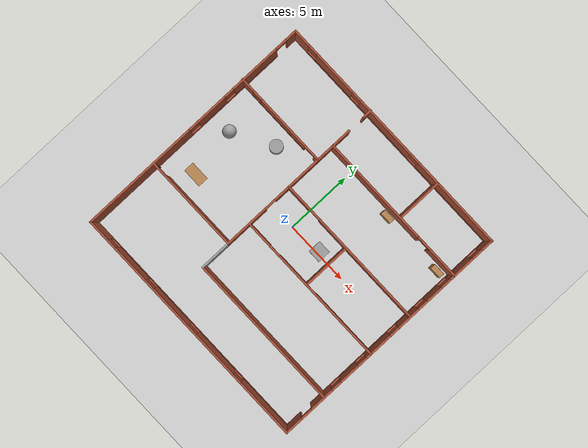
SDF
<sdf version="1.7">
 <world name="default">
  <light name="sun" type="directional">
   <pose>0 0 10 0 -0 0</pose>
   <diffuse>0.8 0.8 0.8 1</diffuse>
   <specular>0.2 0.2 0.2 1</specular>
   <attenuation>
    <range>1000</range>
    <constant>0.9</constant>
    <linear>0.01</linear>
    <quadratic>0.001</quadratic>
   </attenuation>
   <direction>-0.5 0.1 -0.9</direction>
   <spot><inner_angle>0</inner_angle><outer_angle>0</outer_angle><falloff>0</falloff></spot>
  </light>
  <model name="ground_plane">
   <static>1</static>
   <link name="link">
    <collision name="collision">
     <geometry><plane><normal>0 0 1</normal><size>100 100</size></plane></geometry>
     <surface>
      <contact><collide_bitmask>65535</collide_bitmask></contact>
      <friction><ode><mu>100</mu><mu2>50</mu2></ode></friction>
     </surface>
    </collision>
    <visual name="visual">
     <cast_shadows>0</cast_shadows>
     <geometry><plane><normal>0 0 1</normal><size>100 100</size></plane></geometry>
     <material>
      <script><uri>file://media/materials/scripts/gazebo.material</uri><name>Gazebo/Grey</name></script>
     </material>
    </visual>
   </link>
  </model>
  <gravity>0 0 -9.8</gravity>
  <magnetic_field>6e-06 2.3e-05 -4.2e-05</magnetic_field>
  <atmosphere type="adiabatic"/>
  <physics type="ode">
   <max_step_size>0.001</max_step_size>
   <real_time_factor>1</real_time_factor>
   <real_time_update_rate>1000</real_time_update_rate>
  </physics>
  <scene><ambient>0.4 0.4 0.4 1</ambient><background>0.7 0.7 0.7 1</background><shadows>1</shadows></scene>
  <audio><device>default</device></audio>
  <spherical_coordinates>
   <surface_model>EARTH_WGS84</surface_model>
   <latitude_deg>0</latitude_deg>
   <longitude_deg>0</longitude_deg>
   <elevation>0</elevation>
   <heading_deg>0</heading_deg>
  </spherical_coordinates>
  <model name="Robo_house">
   <pose>0.166 -0.2695 0 0 -0 0</pose>
   <link name="Wall_15">
    <pose>0.017 -9.4375 0 0 -0 0</pose>
    <visual name="Wall_15_Visual_0">
     <pose>-8.91507 0 1.25 0 -0 0</pose>
     <geometry><box><size>1.66987 0.15 2.5</size></box></geometry>
     <material>
      <script><uri>file://media/materials/scripts/gazebo.material</uri><name>Gazebo/Bricks</name></script>
      <ambient>1 1 1 1</ambient>
     </material>
     <meta><layer>0</layer></meta>
    </visual>
    <collision name="Wall_15_Collision_0">
     <geometry><box><size>1.66987 0.15 2.5</size></box></geometry>
     <pose>-8.91507 0 1.25 0 -0 0</pose>
    </collision>
    <visual name="Wall_15_Visual_1">
     <pose>0.834934 0 0.25 0 -0 0</pose>
     <geometry><box><size>17.8301 0.15 0.5</size></box></geometry>
     <material>
      <script><uri>file://media/materials/scripts/gazebo.material</uri><name>Gazebo/Bricks</name></script>
      <ambient>1 1 1 1</ambient>
     </material>
     <meta><layer>0</layer></meta>
    </visual>
    <collision name="Wall_15_Collision_1">
     <geometry><box><size>17.8301 0.15 0.5</size></box></geometry>
     <pose>0.834934 0 0.25 0 -0 0</pose>
    </collision>
    <visual name="Wall_15_Visual_2">
     <pose>-5.79807 0 1.5 0 -0 0</pose>
     <geometry><box><size>2.96413 0.15 2</size></box></geometry>
     <material>
      <script><uri>file://media/materials/scripts/gazebo.material</uri><name>Gazebo/Bricks</name></script>
      <ambient>1 1 1 1</ambient>
     </material>
     <meta><layer>0</layer></meta>
    </visual>
    <collision name="Wall_15_Collision_2">
     <geometry><box><size>2.96413 0.15 2</size></box></geometry>
     <pose>-5.79807 0 1.5 0 -0 0</pose>
    </collision>
    <visual name="Wall_15_Visual_3">
     <pose>-1.80528 0 1.5 0 -0 0</pose>
     <geometry><box><size>3.42145 0.15 2</size></box></geometry>
     <material>
      <script><uri>file://media/materials/scripts/gazebo.material</uri><name>Gazebo/Bricks</name></script>
      <ambient>1 1 1 1</ambient>
     </material>
     <meta><layer>0</layer></meta>
    </visual>
    <collision name="Wall_15_Collision_3">
     <geometry><box><size>3.42145 0.15 2</size></box></geometry>
     <pose>-1.80528 0 1.5 0 -0 0</pose>
    </collision>
    <visual name="Wall_15_Visual_4">
     <pose>2.52171 0 1.5 0 -0 0</pose>
     <geometry><box><size>3.63252 0.15 2</size></box></geometry>
     <material>
      <script><uri>file://media/materials/scripts/gazebo.material</uri><name>Gazebo/Bricks</name></script>
      <ambient>1 1 1 1</ambient>
     </material>
     <meta><layer>0</layer></meta>
    </visual>
    <collision name="Wall_15_Collision_4">
     <geometry><box><size>3.63252 0.15 2</size></box></geometry>
     <pose>2.52171 0 1.5 0 -0 0</pose>
    </collision>
    <visual name="Wall_15_Visual_5">
     <pose>7.44398 0 1.5 0 -0 0</pose>
     <geometry><box><size>4.61203 0.15 2</size></box></geometry>
     <material>
      <script><uri>file://media/materials/scripts/gazebo.material</uri><name>Gazebo/Bricks</name></script>
      <ambient>1 1 1 1</ambient>
     </material>
     <meta><layer>0</layer></meta>
    </visual>
    <collision name="Wall_15_Collision_5">
     <geometry><box><size>4.61203 0.15 2</size></box></geometry>
     <pose>7.44398 0 1.5 0 -0 0</pose>
    </collision>
    <visual name="Wall_15_Visual_6">
     <pose>-7.68013 0 1.9 0 -0 0</pose>
     <geometry><box><size>0.8 0.15 1.2</size></box></geometry>
     <material>
      <script><uri>file://media/materials/scripts/gazebo.material</uri><name>Gazebo/Bricks</name></script>
      <ambient>1 1 1 1</ambient>
     </material>
     <meta><layer>0</layer></meta>
    </visual>
    <collision name="Wall_15_Collision_6">
     <geometry><box><size>0.8 0.15 1.2</size></box></geometry>
     <pose>-7.68013 0 1.9 0 -0 0</pose>
    </collision>
    <visual name="Wall_15_Visual_7">
     <pose>-3.91601 0 1.9 0 -0 0</pose>
     <geometry><box><size>0.8 0.15 1.2</size></box></geometry>
     <material>
      <script><uri>file://media/materials/scripts/gazebo.material</uri><name>Gazebo/Bricks</name></script>
      <ambient>1 1 1 1</ambient>
     </material>
     <meta><layer>0</layer></meta>
    </visual>
    <collision name="Wall_15_Collision_7">
     <geometry><box><size>0.8 0.15 1.2</size></box></geometry>
     <pose>-3.91601 0 1.9 0 -0 0</pose>
    </collision>
    <visual name="Wall_15_Visual_8">
     <pose>0.305447 0 1.9 0 -0 0</pose>
     <geometry><box><size>0.8 0.15 1.2</size></box></geometry>
     <material>
      <script><uri>file://media/materials/scripts/gazebo.material</uri><name>Gazebo/Bricks</name></script>
      <ambient>1 1 1 1</ambient>
     </material>
     <meta><layer>0</layer></meta>
    </visual>
    <collision name="Wall_15_Collision_8">
     <geometry><box><size>0.8 0.15 1.2</size></box></geometry>
     <pose>0.305447 0 1.9 0 -0 0</pose>
    </collision>
    <visual name="Wall_15_Visual_9">
     <pose>4.73797 0 1.9 0 -0 0</pose>
     <geometry><box><size>0.8 0.15 1.2</size></box></geometry>
     <material>
      <script><uri>file://media/materials/scripts/gazebo.material</uri><name>Gazebo/Bricks</name></script>
      <ambient>1 1 1 1</ambient>
     </material>
     <meta><layer>0</layer></meta>
    </visual>
    <collision name="Wall_15_Collision_9">
     <geometry><box><size>0.8 0.15 1.2</size></box></geometry>
     <pose>4.73797 0 1.9 0 -0 0</pose>
    </collision>
   </link>
   <link name="Wall_16">
    <pose>9.692 -0.0125 0 0 -0 1.5708</pose>
    <visual name="Wall_16_Visual_0">
     <pose>-8.77922 0 1.25 0 -0 0</pose>
     <geometry><box><size>1.44155 0.15 2.5</size></box></geometry>
     <material>
      <script><uri>file://media/materials/scripts/gazebo.material</uri><name>Gazebo/Bricks</name></script>
      <ambient>1 1 1 1</ambient>
     </material>
     <meta><layer>0</layer></meta>
    </visual>
    <collision name="Wall_16_Collision_0">
     <geometry><box><size>1.44155 0.15 2.5</size></box></geometry>
     <pose>-8.77922 0 1.25 0 -0 0</pose>
    </collision>
    <visual name="Wall_16_Visual_1">
     <pose>-6.20712 0 1.25 0 -0 0</pose>
     <geometry><box><size>1.90264 0.15 2.5</size></box></geometry>
     <material>
      <script><uri>file://media/materials/scripts/gazebo.material</uri><name>Gazebo/Bricks</name></script>
      <ambient>1 1 1 1</ambient>
     </material>
     <meta><layer>0</layer></meta>
    </visual>
    <collision name="Wall_16_Collision_1">
     <geometry><box><size>1.90264 0.15 2.5</size></box></geometry>
     <pose>-6.20712 0 1.25 0 -0 0</pose>
    </collision>
    <visual name="Wall_16_Visual_2">
     <pose>2.1221 0 0.25 0 -0 0</pose>
     <geometry><box><size>14.7558 0.15 0.5</size></box></geometry>
     <material>
      <script><uri>file://media/materials/scripts/gazebo.material</uri><name>Gazebo/Bricks</name></script>
      <ambient>1 1 1 1</ambient>
     </material>
     <meta><layer>0</layer></meta>
    </visual>
    <collision name="Wall_16_Collision_2">
     <geometry><box><size>14.7558 0.15 0.5</size></box></geometry>
     <pose>2.1221 0 0.25 0 -0 0</pose>
    </collision>
    <visual name="Wall_16_Visual_3">
     <pose>-3.67427 0 1.5 0 -0 0</pose>
     <geometry><box><size>1.56306 0.15 2</size></box></geometry>
     <material>
      <script><uri>file://media/materials/scripts/gazebo.material</uri><name>Gazebo/Bricks</name></script>
      <ambient>1 1 1 1</ambient>
     </material>
     <meta><layer>0</layer></meta>
    </visual>
    <collision name="Wall_16_Collision_3">
     <geometry><box><size>1.56306 0.15 2</size></box></geometry>
     <pose>-3.67427 0 1.5 0 -0 0</pose>
    </collision>
    <visual name="Wall_16_Visual_4">
     <pose>-1.00069 0 1.5 0 -0 0</pose>
     <geometry><box><size>2.18411 0.15 2</size></box></geometry>
     <material>
      <script><uri>file://media/materials/scripts/gazebo.material</uri><name>Gazebo/Bricks</name></script>
      <ambient>1 1 1 1</ambient>
     </material>
     <meta><layer>0</layer></meta>
    </visual>
    <collision name="Wall_16_Collision_4">
     <geometry><box><size>2.18411 0.15 2</size></box></geometry>
     <pose>-1.00069 0 1.5 0 -0 0</pose>
    </collision>
    <visual name="Wall_16_Visual_5">
     <pose>1.79027 0 1.5 0 -0 0</pose>
     <geometry><box><size>1.79781 0.15 2</size></box></geometry>
     <material>
      <script><uri>file://media/materials/scripts/gazebo.material</uri><name>Gazebo/Bricks</name></script>
      <ambient>1 1 1 1</ambient>
     </material>
     <meta><layer>0</layer></meta>
    </visual>
    <collision name="Wall_16_Collision_5">
     <geometry><box><size>1.79781 0.15 2</size></box></geometry>
     <pose>1.79027 0 1.5 0 -0 0</pose>
    </collision>
    <visual name="Wall_16_Visual_6">
     <pose>4.15524 0 1.5 0 -0 0</pose>
     <geometry><box><size>1.33214 0.15 2</size></box></geometry>
     <material>
      <script><uri>file://media/materials/scripts/gazebo.material</uri><name>Gazebo/Bricks</name></script>
      <ambient>1 1 1 1</ambient>
     </material>
     <meta><layer>0</layer></meta>
    </visual>
    <collision name="Wall_16_Collision_6">
     <geometry><box><size>1.33214 0.15 2</size></box></geometry>
     <pose>4.15524 0 1.5 0 -0 0</pose>
    </collision>
    <visual name="Wall_16_Visual_7">
     <pose>6.66355 0 1.5 0 -0 0</pose>
     <geometry><box><size>2.08446 0.15 2</size></box></geometry>
     <material>
      <script><uri>file://media/materials/scripts/gazebo.material</uri><name>Gazebo/Bricks</name></script>
      <ambient>1 1 1 1</ambient>
     </material>
     <meta><layer>0</layer></meta>
    </visual>
    <collision name="Wall_16_Collision_7">
     <geometry><box><size>2.08446 0.15 2</size></box></geometry>
     <pose>6.66355 0 1.5 0 -0 0</pose>
    </collision>
    <visual name="Wall_16_Visual_8">
     <pose>9.00289 0 1.5 0 -0 0</pose>
     <geometry><box><size>0.99422 0.15 2</size></box></geometry>
     <material>
      <script><uri>file://media/materials/scripts/gazebo.material</uri><name>Gazebo/Bricks</name></script>
      <ambient>1 1 1 1</ambient>
     </material>
     <meta><layer>0</layer></meta>
    </visual>
    <collision name="Wall_16_Collision_8">
     <geometry><box><size>0.99422 0.15 2</size></box></geometry>
     <pose>9.00289 0 1.5 0 -0 0</pose>
    </collision>
    <visual name="Wall_16_Visual_9">
     <pose>-4.8558 0 1.9 0 -0 0</pose>
     <geometry><box><size>0.8 0.15 1.2</size></box></geometry>
     <material>
      <script><uri>file://media/materials/scripts/gazebo.material</uri><name>Gazebo/Bricks</name></script>
      <ambient>1 1 1 1</ambient>
     </material>
     <meta><layer>0</layer></meta>
    </visual>
    <collision name="Wall_16_Collision_9">
     <geometry><box><size>0.8 0.15 1.2</size></box></geometry>
     <pose>-4.8558 0 1.9 0 -0 0</pose>
    </collision>
    <visual name="Wall_16_Visual_10">
     <pose>-2.49274 0 1.9 0 -0 0</pose>
     <geometry><box><size>0.8 0.15 1.2</size></box></geometry>
     <material>
      <script><uri>file://media/materials/scripts/gazebo.material</uri><name>Gazebo/Bricks</name></script>
      <ambient>1 1 1 1</ambient>
     </material>
     <meta><layer>0</layer></meta>
    </visual>
    <collision name="Wall_16_Collision_10">
     <geometry><box><size>0.8 0.15 1.2</size></box></geometry>
     <pose>-2.49274 0 1.9 0 -0 0</pose>
    </collision>
    <visual name="Wall_16_Visual_11">
     <pose>0.491371 0 1.9 0 -0 0</pose>
     <geometry><box><size>0.8 0.15 1.2</size></box></geometry>
     <material>
      <script><uri>file://media/materials/scripts/gazebo.material</uri><name>Gazebo/Bricks</name></script>
      <ambient>1 1 1 1</ambient>
     </material>
     <meta><layer>0</layer></meta>
    </visual>
    <collision name="Wall_16_Collision_11">
     <geometry><box><size>0.8 0.15 1.2</size></box></geometry>
     <pose>0.491371 0 1.9 0 -0 0</pose>
    </collision>
    <visual name="Wall_16_Visual_12">
     <pose>3.08918 0 1.9 0 -0 0</pose>
     <geometry><box><size>0.8 0.15 1.2</size></box></geometry>
     <material>
      <script><uri>file://media/materials/scripts/gazebo.material</uri><name>Gazebo/Bricks</name></script>
      <ambient>1 1 1 1</ambient>
     </material>
     <meta><layer>0</layer></meta>
    </visual>
    <collision name="Wall_16_Collision_12">
     <geometry><box><size>0.8 0.15 1.2</size></box></geometry>
     <pose>3.08918 0 1.9 0 -0 0</pose>
    </collision>
    <visual name="Wall_16_Visual_13">
     <pose>5.22131 0 1.9 0 -0 0</pose>
     <geometry><box><size>0.8 0.15 1.2</size></box></geometry>
     <material>
      <script><uri>file://media/materials/scripts/gazebo.material</uri><name>Gazebo/Bricks</name></script>
      <ambient>1 1 1 1</ambient>
     </material>
     <meta><layer>0</layer></meta>
    </visual>
    <collision name="Wall_16_Collision_13">
     <geometry><box><size>0.8 0.15 1.2</size></box></geometry>
     <pose>5.22131 0 1.9 0 -0 0</pose>
    </collision>
    <visual name="Wall_16_Visual_14">
     <pose>8.10578 0 1.9 0 -0 0</pose>
     <geometry><box><size>0.8 0.15 1.2</size></box></geometry>
     <material>
      <script><uri>file://media/materials/scripts/gazebo.material</uri><name>Gazebo/Bricks</name></script>
      <ambient>1 1 1 1</ambient>
     </material>
     <meta><layer>0</layer></meta>
    </visual>
    <collision name="Wall_16_Collision_14">
     <geometry><box><size>0.8 0.15 1.2</size></box></geometry>
     <pose>8.10578 0 1.9 0 -0 0</pose>
    </collision>
    <visual name="Wall_16_Visual_15">
     <pose>-7.60845 0 2.25 0 -0 0</pose>
     <geometry><box><size>0.9 0.15 0.5</size></box></geometry>
     <material>
      <script><uri>file://media/materials/scripts/gazebo.material</uri><name>Gazebo/Bricks</name></script>
      <ambient>1 1 1 1</ambient>
     </material>
     <meta><layer>0</layer></meta>
    </visual>
    <collision name="Wall_16_Collision_15">
     <geometry><box><size>0.9 0.15 0.5</size></box></geometry>
     <pose>-7.60845 0 2.25 0 -0 0</pose>
    </collision>
   </link>
   <link name="Wall_20">
    <pose>-9.658 -0.0125 0 0 -0 1.5708</pose>
    <visual name="Wall_20_Visual_0">
     <pose>-4.92846 0 1.25 0 -0 0</pose>
     <geometry><box><size>9.14308 0.15 2.5</size></box></geometry>
     <material>
      <script><uri>file://media/materials/scripts/gazebo.material</uri><name>Gazebo/Bricks</name></script>
      <ambient>1 1 1 1</ambient>
     </material>
     <meta><layer>0</layer></meta>
    </visual>
    <collision name="Wall_20_Collision_0">
     <geometry><box><size>9.14308 0.15 2.5</size></box></geometry>
     <pose>-4.92846 0 1.25 0 -0 0</pose>
    </collision>
    <visual name="Wall_20_Visual_1">
     <pose>9.02608 0 1.25 0 -0 0</pose>
     <geometry><box><size>0.947833 0.15 2.5</size></box></geometry>
     <material>
      <script><uri>file://media/materials/scripts/gazebo.material</uri><name>Gazebo/Bricks</name></script>
      <ambient>1 1 1 1</ambient>
     </material>
     <meta><layer>0</layer></meta>
    </visual>
    <collision name="Wall_20_Collision_1">
     <geometry><box><size>0.947833 0.15 2.5</size></box></geometry>
     <pose>9.02608 0 1.25 0 -0 0</pose>
    </collision>
    <visual name="Wall_20_Visual_2">
     <pose>3.64762 0 0.25 0 -0 0</pose>
     <geometry><box><size>8.00909 0.15 0.5</size></box></geometry>
     <material>
      <script><uri>file://media/materials/scripts/gazebo.material</uri><name>Gazebo/Bricks</name></script>
      <ambient>1 1 1 1</ambient>
     </material>
     <meta><layer>0</layer></meta>
    </visual>
    <collision name="Wall_20_Collision_2">
     <geometry><box><size>8.00909 0.15 0.5</size></box></geometry>
     <pose>3.64762 0 0.25 0 -0 0</pose>
    </collision>
    <visual name="Wall_20_Visual_3">
     <pose>1.67438 0 1.5 0 -0 0</pose>
     <geometry><box><size>2.46259 0.15 2</size></box></geometry>
     <material>
      <script><uri>file://media/materials/scripts/gazebo.material</uri><name>Gazebo/Bricks</name></script>
      <ambient>1 1 1 1</ambient>
     </material>
     <meta><layer>0</layer></meta>
    </visual>
    <collision name="Wall_20_Collision_3">
     <geometry><box><size>2.46259 0.15 2</size></box></geometry>
     <pose>1.67438 0 1.5 0 -0 0</pose>
    </collision>
    <visual name="Wall_20_Visual_4">
     <pose>5.67892 0 1.5 0 -0 0</pose>
     <geometry><box><size>3.9465 0.15 2</size></box></geometry>
     <material>
      <script><uri>file://media/materials/scripts/gazebo.material</uri><name>Gazebo/Bricks</name></script>
      <ambient>1 1 1 1</ambient>
     </material>
     <meta><layer>0</layer></meta>
    </visual>
    <collision name="Wall_20_Collision_4">
     <geometry><box><size>3.9465 0.15 2</size></box></geometry>
     <pose>5.67892 0 1.5 0 -0 0</pose>
    </collision>
    <visual name="Wall_20_Visual_5">
     <pose>0.04308 0 1.9 0 -0 0</pose>
     <geometry><box><size>0.8 0.15 1.2</size></box></geometry>
     <material>
      <script><uri>file://media/materials/scripts/gazebo.material</uri><name>Gazebo/Bricks</name></script>
      <ambient>1 1 1 1</ambient>
     </material>
     <meta><layer>0</layer></meta>
    </visual>
    <collision name="Wall_20_Collision_5">
     <geometry><box><size>0.8 0.15 1.2</size></box></geometry>
     <pose>0.04308 0 1.9 0 -0 0</pose>
    </collision>
    <visual name="Wall_20_Visual_6">
     <pose>3.30567 0 1.9 0 -0 0</pose>
     <geometry><box><size>0.8 0.15 1.2</size></box></geometry>
     <material>
      <script><uri>file://media/materials/scripts/gazebo.material</uri><name>Gazebo/Bricks</name></script>
      <ambient>1 1 1 1</ambient>
     </material>
     <meta><layer>0</layer></meta>
    </visual>
    <collision name="Wall_20_Collision_6">
     <geometry><box><size>0.8 0.15 1.2</size></box></geometry>
     <pose>3.30567 0 1.9 0 -0 0</pose>
    </collision>
    <visual name="Wall_20_Visual_7">
     <pose>8.10217 0 2.25 0 -0 0</pose>
     <geometry><box><size>0.9 0.15 0.5</size></box></geometry>
     <material>
      <script><uri>file://media/materials/scripts/gazebo.material</uri><name>Gazebo/Bricks</name></script>
      <ambient>1 1 1 1</ambient>
     </material>
     <meta><layer>0</layer></meta>
    </visual>
    <collision name="Wall_20_Collision_7">
     <geometry><box><size>0.9 0.15 0.5</size></box></geometry>
     <pose>8.10217 0 2.25 0 -0 0</pose>
    </collision>
   </link>
   <link name="Wall_21">
    <pose>0.017 9.4125 0 0 -0 0</pose>
    <visual name="Wall_21_Visual_0">
     <pose>-9.05411 0 1.25 0 -0 0</pose>
     <geometry><box><size>1.39177 0.15 2.5</size></box></geometry>
     <material>
      <script><uri>file://media/materials/scripts/gazebo.material</uri><name>Gazebo/Bricks</name></script>
      <ambient>1 1 1 1</ambient>
     </material>
     <meta><layer>0</layer></meta>
    </visual>
    <collision name="Wall_21_Collision_0">
     <geometry><box><size>1.39177 0.15 2.5</size></box></geometry>
     <pose>-9.05411 0 1.25 0 -0 0</pose>
    </collision>
    <visual name="Wall_21_Visual_1">
     <pose>0.695886 0 0.25 0 -0 0</pose>
     <geometry><box><size>18.1082 0.15 0.5</size></box></geometry>
     <material>
      <script><uri>file://media/materials/scripts/gazebo.material</uri><name>Gazebo/Bricks</name></script>
      <ambient>1 1 1 1</ambient>
     </material>
     <meta><layer>0</layer></meta>
    </visual>
    <collision name="Wall_21_Collision_1">
     <geometry><box><size>18.1082 0.15 0.5</size></box></geometry>
     <pose>0.695886 0 0.25 0 -0 0</pose>
    </collision>
    <visual name="Wall_21_Visual_2">
     <pose>-5.79711 0 1.5 0 -0 0</pose>
     <geometry><box><size>3.52224 0.15 2</size></box></geometry>
     <material>
      <script><uri>file://media/materials/scripts/gazebo.material</uri><name>Gazebo/Bricks</name></script>
      <ambient>1 1 1 1</ambient>
     </material>
     <meta><layer>0</layer></meta>
    </visual>
    <collision name="Wall_21_Collision_2">
     <geometry><box><size>3.52224 0.15 2</size></box></geometry>
     <pose>-5.79711 0 1.5 0 -0 0</pose>
    </collision>
    <visual name="Wall_21_Visual_3">
     <pose>-0.763639 0 1.5 0 -0 0</pose>
     <geometry><box><size>4.94469 0.15 2</size></box></geometry>
     <material>
      <script><uri>file://media/materials/scripts/gazebo.material</uri><name>Gazebo/Bricks</name></script>
      <ambient>1 1 1 1</ambient>
     </material>
     <meta><layer>0</layer></meta>
    </visual>
    <collision name="Wall_21_Collision_3">
     <geometry><box><size>4.94469 0.15 2</size></box></geometry>
     <pose>-0.763639 0 1.5 0 -0 0</pose>
    </collision>
    <visual name="Wall_21_Visual_4">
     <pose>6.12935 0 1.5 0 -0 0</pose>
     <geometry><box><size>7.24129 0.15 2</size></box></geometry>
     <material>
      <script><uri>file://media/materials/scripts/gazebo.material</uri><name>Gazebo/Bricks</name></script>
      <ambient>1 1 1 1</ambient>
     </material>
     <meta><layer>0</layer></meta>
    </visual>
    <collision name="Wall_21_Collision_4">
     <geometry><box><size>7.24129 0.15 2</size></box></geometry>
     <pose>6.12935 0 1.5 0 -0 0</pose>
    </collision>
    <visual name="Wall_21_Visual_5">
     <pose>-7.95823 0 1.9 0 -0 0</pose>
     <geometry><box><size>0.8 0.15 1.2</size></box></geometry>
     <material>
      <script><uri>file://media/materials/scripts/gazebo.material</uri><name>Gazebo/Bricks</name></script>
      <ambient>1 1 1 1</ambient>
     </material>
     <meta><layer>0</layer></meta>
    </visual>
    <collision name="Wall_21_Collision_5">
     <geometry><box><size>0.8 0.15 1.2</size></box></geometry>
     <pose>-7.95823 0 1.9 0 -0 0</pose>
    </collision>
    <visual name="Wall_21_Visual_6">
     <pose>-3.63598 0 1.9 0 -0 0</pose>
     <geometry><box><size>0.8 0.15 1.2</size></box></geometry>
     <material>
      <script><uri>file://media/materials/scripts/gazebo.material</uri><name>Gazebo/Bricks</name></script>
      <ambient>1 1 1 1</ambient>
     </material>
     <meta><layer>0</layer></meta>
    </visual>
    <collision name="Wall_21_Collision_6">
     <geometry><box><size>0.8 0.15 1.2</size></box></geometry>
     <pose>-3.63598 0 1.9 0 -0 0</pose>
    </collision>
    <visual name="Wall_21_Visual_7">
     <pose>2.10871 0 1.9 0 -0 0</pose>
     <geometry><box><size>0.8 0.15 1.2</size></box></geometry>
     <material>
      <script><uri>file://media/materials/scripts/gazebo.material</uri><name>Gazebo/Bricks</name></script>
      <ambient>1 1 1 1</ambient>
     </material>
     <meta><layer>0</layer></meta>
    </visual>
    <collision name="Wall_21_Collision_7">
     <geometry><box><size>0.8 0.15 1.2</size></box></geometry>
     <pose>2.10871 0 1.9 0 -0 0</pose>
    </collision>
   </link>
   <link name="Wall_23">
    <pose>-5.961 -3.6535 0 0 -0 0</pose>
    <visual name="Wall_23_Visual_0">
     <pose>-3.62205 0 1.25 0 -0 0</pose>
     <geometry><box><size>0.255896 0.15 2.5</size></box></geometry>
     <material>
      <script><uri>file://media/materials/scripts/gazebo.material</uri><name>Gazebo/Bricks</name></script>
      <ambient>1 1 1 1</ambient>
     </material>
     <meta><layer>0</layer></meta>
    </visual>
    <collision name="Wall_23_Collision_0">
     <geometry><box><size>0.255896 0.15 2.5</size></box></geometry>
     <pose>-3.62205 0 1.25 0 -0 0</pose>
    </collision>
    <visual name="Wall_23_Visual_1">
     <pose>0.577948 0 1.25 0 -0 0</pose>
     <geometry><box><size>6.3441 0.15 2.5</size></box></geometry>
     <material>
      <script><uri>file://media/materials/scripts/gazebo.material</uri><name>Gazebo/Bricks</name></script>
      <ambient>1 1 1 1</ambient>
     </material>
     <meta><layer>0</layer></meta>
    </visual>
    <collision name="Wall_23_Collision_1">
     <geometry><box><size>6.3441 0.15 2.5</size></box></geometry>
     <pose>0.577948 0 1.25 0 -0 0</pose>
    </collision>
    <visual name="Wall_23_Visual_2">
     <pose>-3.0441 0 2.25 0 -0 0</pose>
     <geometry><box><size>0.9 0.15 0.5</size></box></geometry>
     <material>
      <script><uri>file://media/materials/scripts/gazebo.material</uri><name>Gazebo/Bricks</name></script>
      <ambient>1 1 1 1</ambient>
     </material>
     <meta><layer>0</layer></meta>
    </visual>
    <collision name="Wall_23_Collision_2">
     <geometry><box><size>0.9 0.15 0.5</size></box></geometry>
     <pose>-3.0441 0 2.25 0 -0 0</pose>
    </collision>
   </link>
   <link name="Wall_24">
    <collision name="Wall_24_Collision">
     <geometry><box><size>2.5 0.15 2.5</size></box></geometry>
     <pose>0 0 1.25 0 -0 0</pose>
    </collision>
    <visual name="Wall_24_Visual">
     <pose>0 0 1.25 0 -0 0</pose>
     <geometry><box><size>2.5 0.15 2.5</size></box></geometry>
     <material>
      <script><uri>file://media/materials/scripts/gazebo.material</uri><name>Gazebo/Grey</name></script>
      <ambient>1 1 1 1</ambient>
     </material>
     <meta><layer>0</layer></meta>
    </visual>
    <pose>-2.286 -4.8285 0 0 -0 -1.5708</pose>
   </link>
   <link name="Wall_25">
    <collision name="Wall_25_Collision">
     <geometry><box><size>12 0.15 2.5</size></box></geometry>
     <pose>0 0 1.25 0 -0 0</pose>
    </collision>
    <visual name="Wall_25_Visual">
     <pose>0 0 1.25 0 -0 0</pose>
     <geometry><box><size>12 0.15 2.5</size></box></geometry>
     <material>
      <script><uri>file://media/materials/scripts/gazebo.material</uri><name>Gazebo/Bricks</name></script>
      <ambient>1 1 1 1</ambient>
     </material>
     <meta><layer>0</layer></meta>
    </visual>
    <pose>3.639 -6.0035 0 0 -0 0</pose>
   </link>
   <link name="Wall_34">
    <pose>7.902 5.9825 0 0 -0 0</pose>
    <visual name="Wall_34_Visual_0">
     <pose>-1.6939 0 1.25 0 -0 0</pose>
     <geometry><box><size>0.362205 0.15 2.5</size></box></geometry>
     <material>
      <script><uri>file://media/materials/scripts/gazebo.material</uri><name>Gazebo/Bricks</name></script>
      <ambient>1 1 1 1</ambient>
     </material>
     <meta><layer>0</layer></meta>
    </visual>
    <collision name="Wall_34_Collision_0">
     <geometry><box><size>0.362205 0.15 2.5</size></box></geometry>
     <pose>-1.6939 0 1.25 0 -0 0</pose>
    </collision>
    <visual name="Wall_34_Visual_1">
     <pose>0.631102 0 1.25 0 -0 0</pose>
     <geometry><box><size>2.4878 0.15 2.5</size></box></geometry>
     <material>
      <script><uri>file://media/materials/scripts/gazebo.material</uri><name>Gazebo/Bricks</name></script>
      <ambient>1 1 1 1</ambient>
     </material>
     <meta><layer>0</layer></meta>
    </visual>
    <collision name="Wall_34_Collision_1">
     <geometry><box><size>2.4878 0.15 2.5</size></box></geometry>
     <pose>0.631102 0 1.25 0 -0 0</pose>
    </collision>
    <visual name="Wall_34_Visual_2">
     <pose>-1.06279 0 2.25 0 -0 0</pose>
     <geometry><box><size>0.9 0.15 0.5</size></box></geometry>
     <material>
      <script><uri>file://media/materials/scripts/gazebo.material</uri><name>Gazebo/Bricks</name></script>
      <ambient>1 1 1 1</ambient>
     </material>
     <meta><layer>0</layer></meta>
    </visual>
    <collision name="Wall_34_Collision_2">
     <geometry><box><size>0.9 0.15 0.5</size></box></geometry>
     <pose>-1.06279 0 2.25 0 -0 0</pose>
    </collision>
   </link>
   <link name="Wall_36">
    <pose>-2.286 1.8965 0 0 -0 1.5708</pose>
    <visual name="Wall_36_Visual_0">
     <pose>-3.87113 0 1.25 0 -0 0</pose>
     <geometry><box><size>3.50774 0.15 2.5</size></box></geometry>
     <material>
      <script><uri>file://media/materials/scripts/gazebo.material</uri><name>Gazebo/Bricks</name></script>
      <ambient>1 1 1 1</ambient>
     </material>
     <meta><layer>0</layer></meta>
    </visual>
    <collision name="Wall_36_Collision_0">
     <geometry><box><size>3.50774 0.15 2.5</size></box></geometry>
     <pose>-3.87113 0 1.25 0 -0 0</pose>
    </collision>
    <visual name="Wall_36_Visual_1">
     <pose>2.20387 0 1.25 0 -0 0</pose>
     <geometry><box><size>6.84226 0.15 2.5</size></box></geometry>
     <material>
      <script><uri>file://media/materials/scripts/gazebo.material</uri><name>Gazebo/Bricks</name></script>
      <ambient>1 1 1 1</ambient>
     </material>
     <meta><layer>0</layer></meta>
    </visual>
    <collision name="Wall_36_Collision_1">
     <geometry><box><size>6.84226 0.15 2.5</size></box></geometry>
     <pose>2.20387 0 1.25 0 -0 0</pose>
    </collision>
    <visual name="Wall_36_Visual_2">
     <pose>-1.66726 0 2.25 0 -0 0</pose>
     <geometry><box><size>0.9 0.15 0.5</size></box></geometry>
     <material>
      <script><uri>file://media/materials/scripts/gazebo.material</uri><name>Gazebo/Bricks</name></script>
      <ambient>1 1 1 1</ambient>
     </material>
     <meta><layer>0</layer></meta>
    </visual>
    <collision name="Wall_36_Collision_2">
     <geometry><box><size>0.9 0.15 0.5</size></box></geometry>
     <pose>-1.66726 0 2.25 0 -0 0</pose>
    </collision>
   </link>
   <link name="Wall_38">
    <collision name="Wall_38_Collision">
     <geometry><box><size>8.5 0.15 2.5</size></box></geometry>
     <pose>0 0 1.25 0 -0 0</pose>
    </collision>
    <visual name="Wall_38_Visual">
     <pose>0 0 1.25 0 -0 0</pose>
     <geometry><box><size>8.5 0.15 2.5</size></box></geometry>
     <material>
      <script><uri>file://media/materials/scripts/gazebo.material</uri><name>Gazebo/Bricks</name></script>
      <ambient>1 1 1 1</ambient>
     </material>
     <meta><layer>0</layer></meta>
    </visual>
    <pose>1.927 5.9825 0 0 -0 3.14159</pose>
   </link>
   <link name="Wall_44">
    <collision name="Wall_44_Collision">
     <geometry><box><size>0.75 0.15 2.5</size></box></geometry>
     <pose>0 0 1.25 0 -0 0</pose>
    </collision>
    <visual name="Wall_44_Visual">
     <pose>0 0 1.25 0 -0 0</pose>
     <geometry><box><size>0.75 0.15 2.5</size></box></geometry>
     <material>
      <script><uri>file://media/materials/scripts/gazebo.material</uri><name>Gazebo/Bricks</name></script>
      <ambient>1 1 1 1</ambient>
     </material>
     <meta><layer>0</layer></meta>
    </visual>
    <pose>-2.281 9.1375 0 0 -0 -1.5708</pose>
   </link>
   <link name="Wall_46">
    <pose>3.659 1.9305 0 0 -0 0</pose>
    <visual name="Wall_46_Visual_0">
     <pose>-4.90616 0 1.25 0 -0 0</pose>
     <geometry><box><size>2.18769 0.15 2.5</size></box></geometry>
     <material>
      <script><uri>file://media/materials/scripts/gazebo.material</uri><name>Gazebo/Bricks</name></script>
      <ambient>1 1 1 1</ambient>
     </material>
     <meta><layer>0</layer></meta>
    </visual>
    <collision name="Wall_46_Collision_0">
     <geometry><box><size>2.18769 0.15 2.5</size></box></geometry>
     <pose>-4.90616 0 1.25 0 -0 0</pose>
    </collision>
    <visual name="Wall_46_Visual_1">
     <pose>1.54384 0 1.25 0 -0 0</pose>
     <geometry><box><size>8.91231 0.15 2.5</size></box></geometry>
     <material>
      <script><uri>file://media/materials/scripts/gazebo.material</uri><name>Gazebo/Bricks</name></script>
      <ambient>1 1 1 1</ambient>
     </material>
     <meta><layer>0</layer></meta>
    </visual>
    <collision name="Wall_46_Collision_1">
     <geometry><box><size>8.91231 0.15 2.5</size></box></geometry>
     <pose>1.54384 0 1.25 0 -0 0</pose>
    </collision>
    <visual name="Wall_46_Visual_2">
     <pose>-3.36231 0 2.25 0 -0 0</pose>
     <geometry><box><size>0.9 0.15 0.5</size></box></geometry>
     <material>
      <script><uri>file://media/materials/scripts/gazebo.material</uri><name>Gazebo/Bricks</name></script>
      <ambient>1 1 1 1</ambient>
     </material>
     <meta><layer>0</layer></meta>
    </visual>
    <collision name="Wall_46_Collision_2">
     <geometry><box><size>0.9 0.15 0.5</size></box></geometry>
     <pose>-3.36231 0 2.25 0 -0 0</pose>
    </collision>
   </link>
   <link name="Wall_48">
    <pose>3.74 -1.7145 0 0 -0 0</pose>
    <visual name="Wall_48_Visual_0">
     <pose>-4.99272 0 1.25 0 -0 0</pose>
     <geometry><box><size>2.01456 0.15 2.5</size></box></geometry>
     <material>
      <script><uri>file://media/materials/scripts/gazebo.material</uri><name>Gazebo/Bricks</name></script>
      <ambient>1 1 1 1</ambient>
     </material>
     <meta><layer>0</layer></meta>
    </visual>
    <collision name="Wall_48_Collision_0">
     <geometry><box><size>2.01456 0.15 2.5</size></box></geometry>
     <pose>-4.99272 0 1.25 0 -0 0</pose>
    </collision>
    <visual name="Wall_48_Visual_1">
     <pose>-1.69471 0 1.25 0 -0 0</pose>
     <geometry><box><size>2.78146 0.15 2.5</size></box></geometry>
     <material>
      <script><uri>file://media/materials/scripts/gazebo.material</uri><name>Gazebo/Bricks</name></script>
      <ambient>1 1 1 1</ambient>
     </material>
     <meta><layer>0</layer></meta>
    </visual>
    <collision name="Wall_48_Collision_1">
     <geometry><box><size>2.78146 0.15 2.5</size></box></geometry>
     <pose>-1.69471 0 1.25 0 -0 0</pose>
    </collision>
    <visual name="Wall_48_Visual_2">
     <pose>3.29801 0 1.25 0 -0 0</pose>
     <geometry><box><size>5.40398 0.15 2.5</size></box></geometry>
     <material>
      <script><uri>file://media/materials/scripts/gazebo.material</uri><name>Gazebo/Bricks</name></script>
      <ambient>1 1 1 1</ambient>
     </material>
     <meta><layer>0</layer></meta>
    </visual>
    <collision name="Wall_48_Collision_2">
     <geometry><box><size>5.40398 0.15 2.5</size></box></geometry>
     <pose>3.29801 0 1.25 0 -0 0</pose>
    </collision>
    <visual name="Wall_48_Visual_3">
     <pose>-3.53544 0 2.25 0 -0 0</pose>
     <geometry><box><size>0.9 0.15 0.5</size></box></geometry>
     <material>
      <script><uri>file://media/materials/scripts/gazebo.material</uri><name>Gazebo/Bricks</name></script>
      <ambient>1 1 1 1</ambient>
     </material>
     <meta><layer>0</layer></meta>
    </visual>
    <collision name="Wall_48_Collision_3">
     <geometry><box><size>0.9 0.15 0.5</size></box></geometry>
     <pose>-3.53544 0 2.25 0 -0 0</pose>
    </collision>
    <visual name="Wall_48_Visual_4">
     <pose>0.146022 0 2.25 0 -0 0</pose>
     <geometry><box><size>0.9 0.15 0.5</size></box></geometry>
     <material>
      <script><uri>file://media/materials/scripts/gazebo.material</uri><name>Gazebo/Bricks</name></script>
      <ambient>1 1 1 1</ambient>
     </material>
     <meta><layer>0</layer></meta>
    </visual>
    <collision name="Wall_48_Collision_4">
     <geometry><box><size>0.9 0.15 0.5</size></box></geometry>
     <pose>0.146022 0 2.25 0 -0 0</pose>
    </collision>
   </link>
   <link name="Wall_56">
    <collision name="Wall_56_Collision">
     <geometry><box><size>3.75 0.15 2.5</size></box></geometry>
     <pose>0 0 1.25 0 -0 0</pose>
    </collision>
    <visual name="Wall_56_Visual">
     <pose>0 0 1.25 0 -0 0</pose>
     <geometry><box><size>3.75 0.15 2.5</size></box></geometry>
     <material>
      <script><uri>file://media/materials/scripts/gazebo.material</uri><name>Gazebo/Bricks</name></script>
      <ambient>1 1 1 1</ambient>
     </material>
     <meta><layer>0</layer></meta>
    </visual>
    <pose>3.36 0.0925 0 0 -0 -1.5708</pose>
   </link>
   <link name="Wall_58">
    <collision name="Wall_58_Collision">
     <geometry><box><size>3.5 0.15 2.5</size></box></geometry>
     <pose>0 0 1.25 0 -0 0</pose>
    </collision>
    <visual name="Wall_58_Visual">
     <pose>0 0 1.25 0 -0 0</pose>
     <geometry><box><size>3.5 0.15 2.5</size></box></geometry>
     <material>
      <script><uri>file://media/materials/scripts/gazebo.material</uri><name>Gazebo/Bricks</name></script>
      <ambient>1 1 1 1</ambient>
     </material>
     <meta><layer>0</layer></meta>
    </visual>
    <pose>4.374 7.6945 0 0 -0 -1.5708</pose>
   </link>
   <link name="Wall_60">
    <pose>-6.027 4.5905 0 0 -0 0</pose>
    <visual name="Wall_60_Visual_0">
     <pose>-3.18357 0 1.25 0 -0 0</pose>
     <geometry><box><size>1.13285 0.15 2.5</size></box></geometry>
     <material>
      <script><uri>file://media/materials/scripts/gazebo.material</uri><name>Gazebo/Bricks</name></script>
      <ambient>1 1 1 1</ambient>
     </material>
     <meta><layer>0</layer></meta>
    </visual>
    <collision name="Wall_60_Collision_0">
     <geometry><box><size>1.13285 0.15 2.5</size></box></geometry>
     <pose>-3.18357 0 1.25 0 -0 0</pose>
    </collision>
    <visual name="Wall_60_Visual_1">
     <pose>3.56381 0 1.25 0 -0 0</pose>
     <geometry><box><size>0.372382 0.15 2.5</size></box></geometry>
     <material>
      <script><uri>file://media/materials/scripts/gazebo.material</uri><name>Gazebo/Bricks</name></script>
      <ambient>1 1 1 1</ambient>
     </material>
     <meta><layer>0</layer></meta>
    </visual>
    <collision name="Wall_60_Collision_1">
     <geometry><box><size>0.372382 0.15 2.5</size></box></geometry>
     <pose>3.56381 0 1.25 0 -0 0</pose>
    </collision>
    <visual name="Wall_60_Visual_2">
     <pose>-0.069764 0 0.25 0 -0 0</pose>
     <geometry><box><size>5.09476 0.15 0.5</size></box></geometry>
     <material>
      <script><uri>file://media/materials/scripts/gazebo.material</uri><name>Gazebo/Bricks</name></script>
      <ambient>1 1 1 1</ambient>
     </material>
     <meta><layer>0</layer></meta>
    </visual>
    <collision name="Wall_60_Collision_2">
     <geometry><box><size>5.09476 0.15 0.5</size></box></geometry>
     <pose>-0.069764 0 0.25 0 -0 0</pose>
    </collision>
    <visual name="Wall_60_Visual_3">
     <pose>0.330236 0 1.5 0 -0 0</pose>
     <geometry><box><size>4.29476 0.15 2</size></box></geometry>
     <material>
      <script><uri>file://media/materials/scripts/gazebo.material</uri><name>Gazebo/Bricks</name></script>
      <ambient>1 1 1 1</ambient>
     </material>
     <meta><layer>0</layer></meta>
    </visual>
    <collision name="Wall_60_Collision_3">
     <geometry><box><size>4.29476 0.15 2</size></box></geometry>
     <pose>0.330236 0 1.5 0 -0 0</pose>
    </collision>
    <visual name="Wall_60_Visual_4">
     <pose>-2.21715 0 1.9 0 -0 0</pose>
     <geometry><box><size>0.8 0.15 1.2</size></box></geometry>
     <material>
      <script><uri>file://media/materials/scripts/gazebo.material</uri><name>Gazebo/Bricks</name></script>
      <ambient>1 1 1 1</ambient>
     </material>
     <meta><layer>0</layer></meta>
    </visual>
    <collision name="Wall_60_Collision_4">
     <geometry><box><size>0.8 0.15 1.2</size></box></geometry>
     <pose>-2.21715 0 1.9 0 -0 0</pose>
    </collision>
    <visual name="Wall_60_Visual_5">
     <pose>2.92762 0 2.25 0 -0 0</pose>
     <geometry><box><size>0.9 0.15 0.5</size></box></geometry>
     <material>
      <script><uri>file://media/materials/scripts/gazebo.material</uri><name>Gazebo/Bricks</name></script>
      <ambient>1 1 1 1</ambient>
     </material>
     <meta><layer>0</layer></meta>
    </visual>
    <collision name="Wall_60_Collision_5">
     <geometry><box><size>0.9 0.15 0.5</size></box></geometry>
     <pose>2.92762 0 2.25 0 -0 0</pose>
    </collision>
   </link>
   <static>1</static>
  </model>
  <model name="bookshelf">
   <static>1</static>
   <link name="link">
    <inertial><mass>1</mass></inertial>
    <collision name="back">
     <pose>0 0.005 0.6 0 -0 0</pose>
     <geometry><box><size>0.9 0.01 1.2</size></box></geometry>
    </collision>
    <visual name="visual1">
     <pose>0 0.005 0.6 0 -0 0</pose>
     <geometry><box><size>0.9 0.01 1.2</size></box></geometry>
     <material>
      <script><uri>file://media/materials/scripts/gazebo.material</uri><name>Gazebo/Wood</name></script>
     </material>
    </visual>
    <collision name="left_side">
     <pose>0.45 -0.195 0.6 0 -0 0</pose>
     <geometry><box><size>0.02 0.4 1.2</size></box></geometry>
    </collision>
    <visual name="visual2">
     <pose>0.45 -0.195 0.6 0 -0 0</pose>
     <geometry><box><size>0.02 0.4 1.2</size></box></geometry>
     <material>
      <script><uri>file://media/materials/scripts/gazebo.material</uri><name>Gazebo/Wood</name></script>
     </material>
    </visual>
    <collision name="right_side">
     <pose>-0.45 -0.195 0.6 0 -0 0</pose>
     <geometry><box><size>0.02 0.4 1.2</size></box></geometry>
    </collision>
    <visual name="visual3">
     <pose>-0.45 -0.195 0.6 0 -0 0</pose>
     <geometry><box><size>0.02 0.4 1.2</size></box></geometry>
     <material>
      <script><uri>file://media/materials/scripts/gazebo.material</uri><name>Gazebo/Wood</name></script>
     </material>
    </visual>
    <collision name="bottom">
     <pose>0 -0.195 0.03 0 -0 0</pose>
     <geometry><box><size>0.88 0.4 0.06</size></box></geometry>
    </collision>
    <visual name="visual4">
     <pose>0 -0.195 0.03 0 -0 0</pose>
     <geometry><box><size>0.88 0.4 0.06</size></box></geometry>
     <material>
      <script><uri>file://media/materials/scripts/gazebo.material</uri><name>Gazebo/Wood</name></script>
     </material>
    </visual>
    <collision name="top">
     <pose>0 -0.195 1.19 0 -0 0</pose>
     <geometry><box><size>0.88 0.4 0.02</size></box></geometry>
    </collision>
    <visual name="visual5">
     <pose>0 -0.195 1.19 0 -0 0</pose>
     <geometry><box><size>0.88 0.4 0.02</size></box></geometry>
     <material>
      <script><uri>file://media/materials/scripts/gazebo.material</uri><name>Gazebo/Wood</name></script>
     </material>
    </visual>
    <collision name="low_shelf">
     <pose>0 -0.195 0.43 0 -0 0</pose>
     <geometry><box><size>0.88 0.4 0.02</size></box></geometry>
    </collision>
    <visual name="visual6">
     <pose>0 -0.195 0.43 0 -0 0</pose>
     <geometry><box><size>0.88 0.4 0.02</size></box></geometry>
     <material>
      <script><uri>file://media/materials/scripts/gazebo.material</uri><name>Gazebo/Wood</name></script>
     </material>
    </visual>
    <collision name="high_shelf">
     <pose>0 -0.195 0.8 0 -0 0</pose>
     <geometry><box><size>0.88 0.4 0.02</size></box></geometry>
    </collision>
    <visual name="visual7">
     <pose>0 -0.195 0.8 0 -0 0</pose>
     <geometry><box><size>0.88 0.4 0.02</size></box></geometry>
     <material>
      <script><uri>file://media/materials/scripts/gazebo.material</uri><name>Gazebo/Wood</name></script>
     </material>
    </visual>
   </link>
   <pose>9.00285 5.39835 0 0 -0 0</pose>
  </model>
  <model name="bookshelf_0">
   <static>1</static>
   <link name="link">
    <inertial><mass>1</mass></inertial>
    <collision name="back">
     <pose>0 0.005 0.6 0 -0 0</pose>
     <geometry><box><size>0.9 0.01 1.2</size></box></geometry>
    </collision>
    <visual name="visual1">
     <pose>0 0.005 0.6 0 -0 0</pose>
     <geometry><box><size>0.9 0.01 1.2</size></box></geometry>
     <material>
      <script><uri>file://media/materials/scripts/gazebo.material</uri><name>Gazebo/Wood</name></script>
     </material>
    </visual>
    <collision name="left_side">
     <pose>0.45 -0.195 0.6 0 -0 0</pose>
     <geometry><box><size>0.02 0.4 1.2</size></box></geometry>
    </collision>
    <visual name="visual2">
     <pose>0.45 -0.195 0.6 0 -0 0</pose>
     <geometry><box><size>0.02 0.4 1.2</size></box></geometry>
     <material>
      <script><uri>file://media/materials/scripts/gazebo.material</uri><name>Gazebo/Wood</name></script>
     </material>
    </visual>
    <collision name="right_side">
     <pose>-0.45 -0.195 0.6 0 -0 0</pose>
     <geometry><box><size>0.02 0.4 1.2</size></box></geometry>
    </collision>
    <visual name="visual3">
     <pose>-0.45 -0.195 0.6 0 -0 0</pose>
     <geometry><box><size>0.02 0.4 1.2</size></box></geometry>
     <material>
      <script><uri>file://media/materials/scripts/gazebo.material</uri><name>Gazebo/Wood</name></script>
     </material>
    </visual>
    <collision name="bottom">
     <pose>0 -0.195 0.03 0 -0 0</pose>
     <geometry><box><size>0.88 0.4 0.06</size></box></geometry>
    </collision>
    <visual name="visual4">
     <pose>0 -0.195 0.03 0 -0 0</pose>
     <geometry><box><size>0.88 0.4 0.06</size></box></geometry>
     <material>
      <script><uri>file://media/materials/scripts/gazebo.material</uri><name>Gazebo/Wood</name></script>
     </material>
    </visual>
    <collision name="top">
     <pose>0 -0.195 1.19 0 -0 0</pose>
     <geometry><box><size>0.88 0.4 0.02</size></box></geometry>
    </collision>
    <visual name="visual5">
     <pose>0 -0.195 1.19 0 -0 0</pose>
     <geometry><box><size>0.88 0.4 0.02</size></box></geometry>
     <material>
      <script><uri>file://media/materials/scripts/gazebo.material</uri><name>Gazebo/Wood</name></script>
     </material>
    </visual>
    <collision name="low_shelf">
     <pose>0 -0.195 0.43 0 -0 0</pose>
     <geometry><box><size>0.88 0.4 0.02</size></box></geometry>
    </collision>
    <visual name="visual6">
     <pose>0 -0.195 0.43 0 -0 0</pose>
     <geometry><box><size>0.88 0.4 0.02</size></box></geometry>
     <material>
      <script><uri>file://media/materials/scripts/gazebo.material</uri><name>Gazebo/Wood</name></script>
     </material>
    </visual>
    <collision name="high_shelf">
     <pose>0 -0.195 0.8 0 -0 0</pose>
     <geometry><box><size>0.88 0.4 0.02</size></box></geometry>
    </collision>
    <visual name="visual7">
     <pose>0 -0.195 0.8 0 -0 0</pose>
     <geometry><box><size>0.88 0.4 0.02</size></box></geometry>
     <material>
      <script><uri>file://media/materials/scripts/gazebo.material</uri><name>Gazebo/Wood</name></script>
     </material>
    </visual>
   </link>
   <pose>3.9398 5.46542 0 0 -0 0</pose>
  </model>
  <model name="table">
   <static>1</static>
   <link name="link">
    <collision name="surface">
     <pose>0 0 1 0 -0 0</pose>
     <geometry><box><size>1.5 0.8 0.03</size></box></geometry>
     <surface><friction><ode><mu>0.6</mu><mu2>0.6</mu2></ode></friction></surface>
    </collision>
    <visual name="visual1">
     <pose>0 0 1 0 -0 0</pose>
     <geometry><box><size>1.5 0.8 0.03</size></box></geometry>
     <material>
      <script><uri>file://media/materials/scripts/gazebo.material</uri><name>Gazebo/Wood</name></script>
     </material>
    </visual>
    <collision name="front_left_leg">
     <pose>0.68 0.38 0.5 0 -0 0</pose>
     <geometry><cylinder><radius>0.02</radius><length>1</length></cylinder></geometry>
    </collision>
    <visual name="front_left_leg">
     <pose>0.68 0.38 0.5 0 -0 0</pose>
     <geometry><cylinder><radius>0.02</radius><length>1</length></cylinder></geometry>
     <material>
      <script><uri>file://media/materials/scripts/gazebo.material</uri><name>Gazebo/Grey</name></script>
     </material>
    </visual>
    <collision name="front_right_leg">
     <pose>0.68 -0.38 0.5 0 -0 0</pose>
     <geometry><cylinder><radius>0.02</radius><length>1</length></cylinder></geometry>
    </collision>
    <visual name="front_right_leg">
     <pose>0.68 -0.38 0.5 0 -0 0</pose>
     <geometry><cylinder><radius>0.02</radius><length>1</length></cylinder></geometry>
     <material>
      <script><uri>file://media/materials/scripts/gazebo.material</uri><name>Gazebo/Grey</name></script>
     </material>
    </visual>
    <collision name="back_right_leg">
     <pose>-0.68 -0.38 0.5 0 -0 0</pose>
     <geometry><cylinder><radius>0.02</radius><length>1</length></cylinder></geometry>
    </collision>
    <visual name="back_right_leg">
     <pose>-0.68 -0.38 0.5 0 -0 0</pose>
     <geometry><cylinder><radius>0.02</radius><length>1</length></cylinder></geometry>
     <material>
      <script><uri>file://media/materials/scripts/gazebo.material</uri><name>Gazebo/Grey</name></script>
     </material>
    </visual>
    <collision name="back_left_leg">
     <pose>-0.68 0.38 0.5 0 -0 0</pose>
     <geometry><cylinder><radius>0.02</radius><length>1</length></cylinder></geometry>
    </collision>
    <visual name="back_left_leg">
     <pose>-0.68 0.38 0.5 0 -0 0</pose>
     <geometry><cylinder><radius>0.02</radius><length>1</length></cylinder></geometry>
     <material>
      <script><uri>file://media/materials/scripts/gazebo.material</uri><name>Gazebo/Grey</name></script>
     </material>
    </visual>
   </link>
   <pose>-7.21745 -2.40025 -0.372701 0 -0 0</pose>
  </model>
  <model name="unit_sphere">
   <pose>-7.83973 1.3338 0.5 0 -0 0</pose>
   <link name="link">
    <inertial>
     <mass>1</mass>
     <inertia><ixx>0.1</ixx><ixy>0</ixy><ixz>0</ixz><iyy>0.1</iyy><iyz>0</iyz><izz>0.1</izz></inertia>
    </inertial>
    <collision name="collision"><geometry><sphere><radius>0.5</radius></sphere></geometry></collision>
    <visual name="visual">
     <geometry><sphere><radius>0.5</radius></sphere></geometry>
     <material>
      <script><name>Gazebo/Grey</name><uri>file://media/materials/scripts/gazebo.material</uri></script>
     </material>
    </visual>
   </link>
  </model>
  <model name="unit_cylinder">
   <pose>-4.83152 2.98027 0.499993 -3e-06 -4e-06 -0</pose>
   <link name="link">
    <inertial>
     <mass>1</mass>
     <inertia><ixx>0.145833</ixx><ixy>0</ixy><ixz>0</ixz><iyy>0.145833</iyy><iyz>0</iyz><izz>0.125</izz></inertia>
    </inertial>
    <collision name="collision">
     <geometry><cylinder><radius>0.5</radius><length>1</length></cylinder></geometry>
    </collision>
    <visual name="visual">
     <geometry><cylinder><radius>0.5</radius><length>1</length></cylinder></geometry>
     <material>
      <script><name>Gazebo/Grey</name><uri>file://media/materials/scripts/gazebo.material</uri></script>
     </material>
    </visual>
   </link>
  </model>
  <model name="unit_box">
   <pose>2.51484 0.19374 0.499995 1e-05 -0 0</pose>
   <link name="link">
    <inertial>
     <mass>1</mass>
     <inertia>
      <ixx>0.166667</ixx>
      <ixy>0</ixy>
      <ixz>0</ixz>
      <iyy>0.166667</iyy>
      <iyz>0</iyz>
      <izz>0.166667</izz>
     </inertia>
    </inertial>
    <collision name="collision"><geometry><box><size>1 1 1</size></box></geometry></collision>
    <visual name="visual">
     <geometry><box><size>1 1 1</size></box></geometry>
     <material>
      <script><name>Gazebo/Grey</name><uri>file://media/materials/scripts/gazebo.material</uri></script>
     </material>
    </visual>
   </link>
  </model>
 </world>
</sdf>
